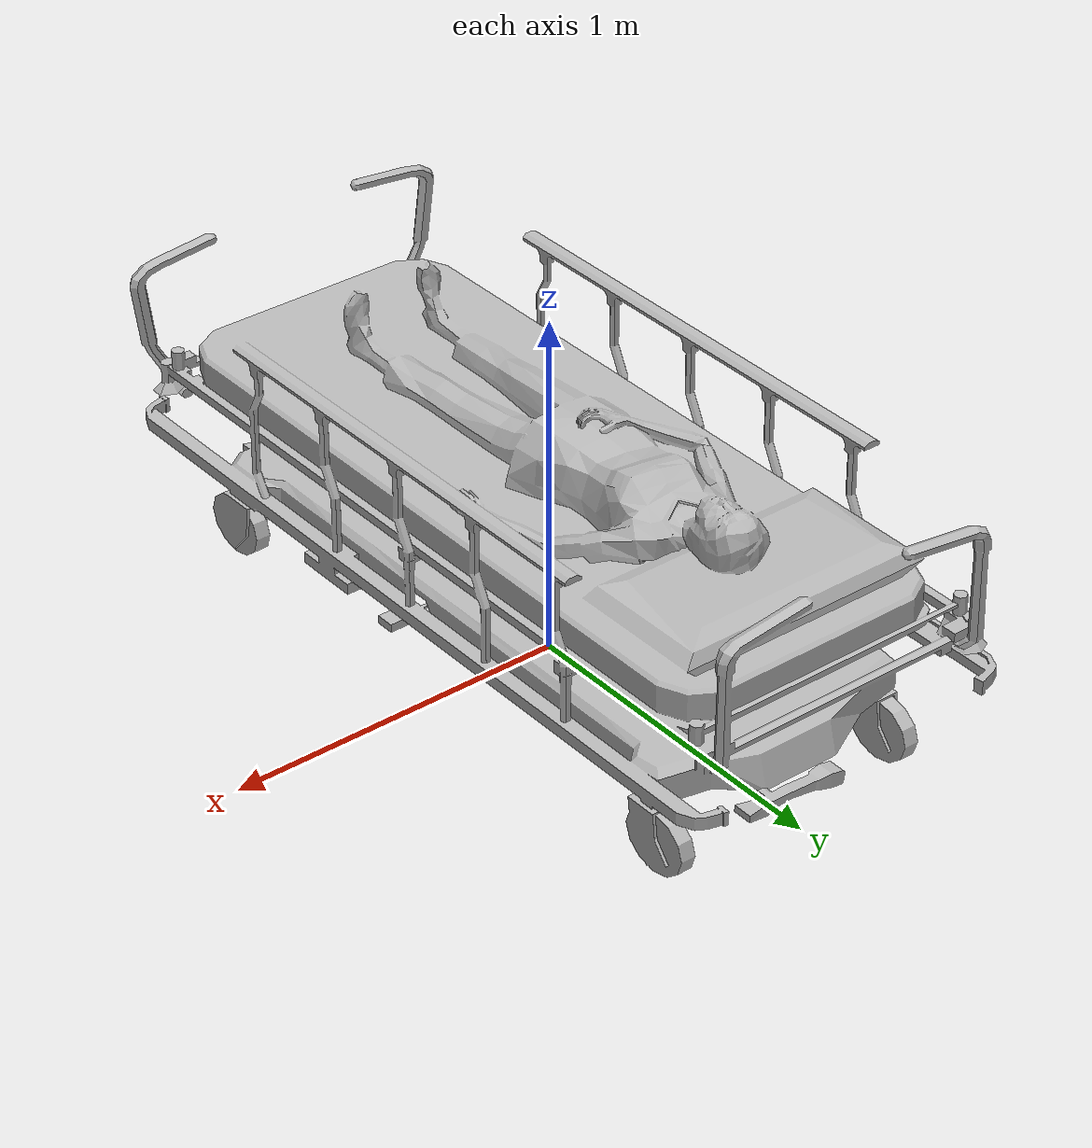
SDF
<?xml version='1.0' encoding='utf-8'?>
<sdf version="1.6">
  <model name="TrolleyBedPatient">
   <static>true</static>
    <link name="body">
      <pose>0 0 0 0 0 0</pose>

      <visual name="visual">
        <geometry>
          <mesh>
            <uri>model://TrolleyBedPatient/meshes/TrolleyBedPatient.obj</uri>
          </mesh>
        </geometry>
      </visual>

      <collision name="collision">
        <geometry>
          <mesh>
            <uri>model://TrolleyBedPatient/meshes/TrolleyBedPatient.dae</uri>
          </mesh>
        </geometry>
      </collision>

    </link>
  </model>
</sdf>
